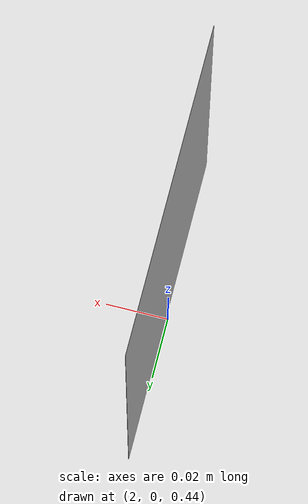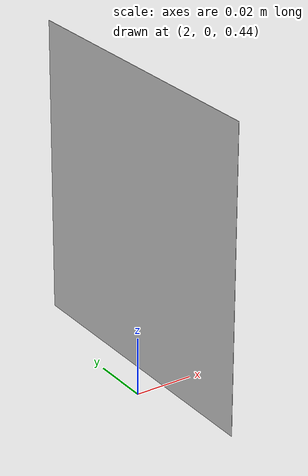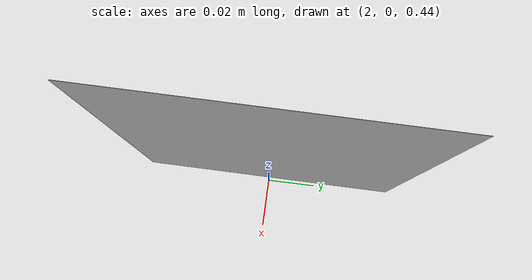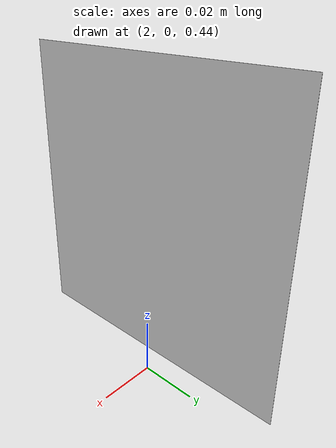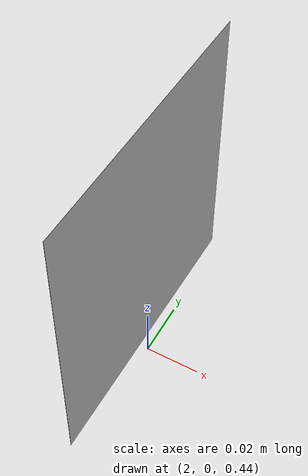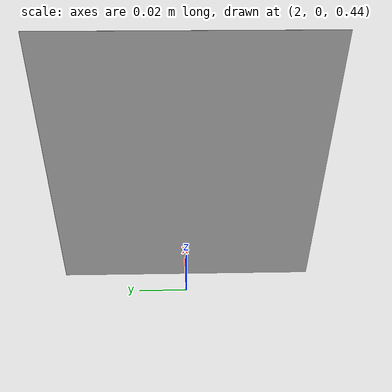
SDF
<sdf version="1.7">
  <world name="default">
    <include>
        <uri>model://sun</uri>
    </include>

    <include>
        <uri>model://ground_plane</uri>
    </include>

    <include>
        <name>Apriltag36_11_00000</name>
        <uri>model://Apriltag36_11_00000</uri>
        <pose> 2.0 0 0.5 0 1.5708 0</pose>
    </include>

    <gui fullscreen="0">
        <camera name="user_camera">
            <pose frame="">9.0 -12.0 6.0 0.0 0.3 2.2</pose>
            <view_controller>orbit</view_controller>
            <projection_type>perspective</projection_type>
        </camera>
    </gui>
  </world>
</sdf>

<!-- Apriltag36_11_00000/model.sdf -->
<sdf version='1.6'>
  <model name='Apriltag36_11_00000'>
    <link name="link">
      <inertial>
        <pose>0 0 0 0 0 0</pose>
        <mass>0.5</mass>
        <inertia>
          <ixx>0.0001</ixx>
          <ixy>0</ixy>
          <ixz>0</ixz>
          <iyy>0.0001</iyy>
          <iyz>0</iyz>
          <izz>0.0001</izz>
        </inertia>
      </inertial>
      <collision name="collision">
        <pose>0 0 0 0 0 0</pose>
        <geometry>
          <mesh>
            <uri>model://Apriltag36_11_00000/meshes/tag36_11_00000.dae</uri>
          </mesh>
        </geometry>
        <surface>
          <friction>
            <ode>
              <mu>1.0</mu>
              <mu2>1.0</mu2>
            </ode>
          </friction>
          <contact>
            <ode>
              <kp>10000000.0</kp>
              <kd>1.0</kd>
              <min_depth>0.001</min_depth>
              <max_vel>0.1</max_vel>
            </ode>
          </contact>
        </surface>
      </collision>
      <visual name="visual">
        <pose>0 0 0 0 0 0</pose>
        <geometry>
          <mesh>
            <uri>model://Apriltag36_11_00000/meshes/tag36_11_00000.dae</uri>
          </mesh>
        </geometry>
      </visual>
    </link>
  </model>
</sdf>
